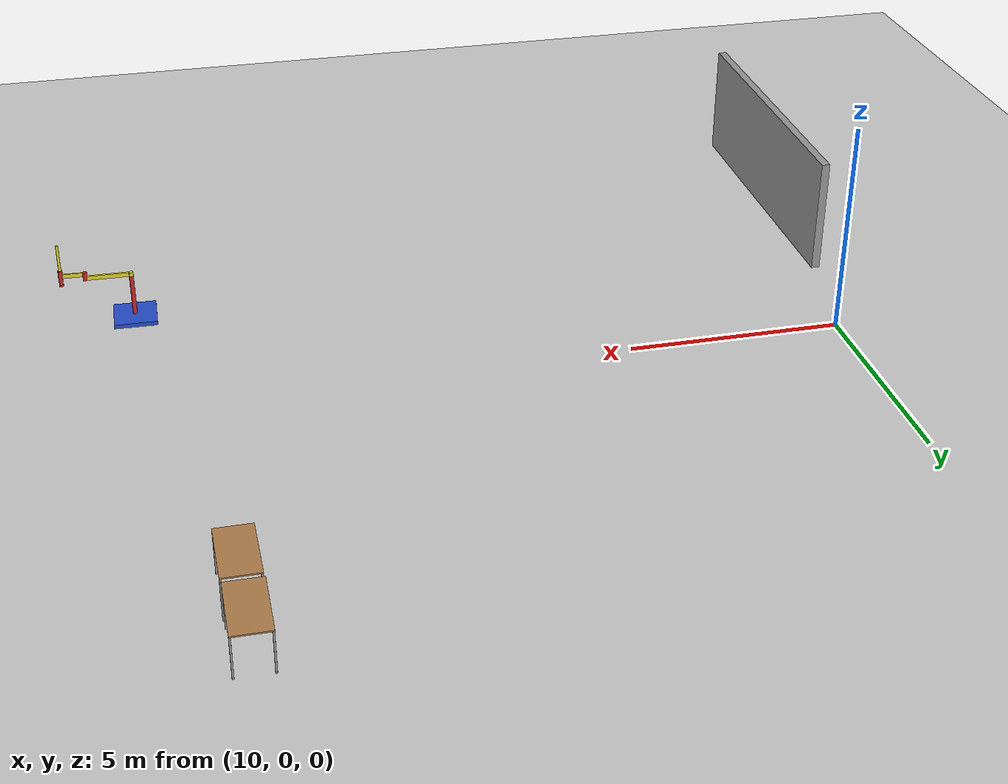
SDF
<sdf version="1.4">
 <world name="default">
  <model name="ground_plane">
   <static>1</static>
   <link name="link">
    <collision name="collision">
     <geometry><plane><normal>0 0 1</normal><size>100 100</size></plane></geometry>
     <surface><friction><ode><mu>100</mu><mu2>50</mu2></ode></friction></surface>
    </collision>
    <visual name="visual">
     <cast_shadows>0</cast_shadows>
     <geometry><plane><normal>0 0 1</normal><size>100 100</size></plane></geometry>
     <material>
      <script><uri>file://media/materials/scripts/gazebo.material</uri><name>Gazebo/Grey</name></script>
     </material>
    </visual>
    <velocity_decay><linear>0</linear><angular>0</angular></velocity_decay>
   </link>
  </model>
  <model name="grey_wall">
   <static>1</static>
   <link name="link">
    <pose>0 0 1.4 0 -0 0</pose>
    <collision name="collision"><geometry><box><size>7.5 0.2 2.8</size></box></geometry></collision>
    <visual name="visual">
     <cast_shadows>0</cast_shadows>
     <geometry><box><size>7.5 0.2 2.8</size></box></geometry>
     <material>
      <script>
       <uri>model://grey_wall/materials/scripts</uri>
       <uri>model://grey_wall/materials/textures</uri>
       <name>vrc/grey_wall</name>
      </script>
     </material>
    </visual>
    <velocity_decay><linear>0</linear><angular>0</angular></velocity_decay>
   </link>
   <pose>9.36447 -6.53474 0 0 0 -1.57522</pose>
  </model>
  <model name="table">
   <static>1</static>
   <link name="link">
    <collision name="surface">
     <pose>0 0 1 0 -0 0</pose>
     <geometry><box><size>1.5 0.8 0.03</size></box></geometry>
     <surface><friction><ode><mu>0.6</mu><mu2>0.6</mu2></ode></friction></surface>
    </collision>
    <visual name="visual1">
     <pose>0 0 1 0 -0 0</pose>
     <geometry><box><size>1.5 0.8 0.03</size></box></geometry>
     <material>
      <script><uri>file://media/materials/scripts/gazebo.material</uri><name>Gazebo/Wood</name></script>
     </material>
    </visual>
    <collision name="front_left_leg">
     <pose>0.68 0.38 0.5 0 -0 0</pose>
     <geometry><cylinder><radius>0.02</radius><length>1</length></cylinder></geometry>
    </collision>
    <visual name="front_left_leg">
     <pose>0.68 0.38 0.5 0 -0 0</pose>
     <geometry><cylinder><radius>0.02</radius><length>1</length></cylinder></geometry>
     <material>
      <script><uri>file://media/materials/scripts/gazebo.material</uri><name>Gazebo/Grey</name></script>
     </material>
    </visual>
    <collision name="front_right_leg">
     <pose>0.68 -0.38 0.5 0 -0 0</pose>
     <geometry><cylinder><radius>0.02</radius><length>1</length></cylinder></geometry>
    </collision>
    <visual name="front_right_leg">
     <pose>0.68 -0.38 0.5 0 -0 0</pose>
     <geometry><cylinder><radius>0.02</radius><length>1</length></cylinder></geometry>
     <material>
      <script><uri>file://media/materials/scripts/gazebo.material</uri><name>Gazebo/Grey</name></script>
     </material>
    </visual>
    <collision name="back_right_leg">
     <pose>-0.68 -0.38 0.5 0 -0 0</pose>
     <geometry><cylinder><radius>0.02</radius><length>1</length></cylinder></geometry>
    </collision>
    <visual name="back_right_leg">
     <pose>-0.68 -0.38 0.5 0 -0 0</pose>
     <geometry><cylinder><radius>0.02</radius><length>1</length></cylinder></geometry>
     <material>
      <script><uri>file://media/materials/scripts/gazebo.material</uri><name>Gazebo/Grey</name></script>
     </material>
    </visual>
    <collision name="back_left_leg">
     <pose>-0.68 0.38 0.5 0 -0 0</pose>
     <geometry><cylinder><radius>0.02</radius><length>1</length></cylinder></geometry>
    </collision>
    <visual name="back_left_leg">
     <pose>-0.68 0.38 0.5 0 -0 0</pose>
     <geometry><cylinder><radius>0.02</radius><length>1</length></cylinder></geometry>
     <material>
      <script><uri>file://media/materials/scripts/gazebo.material</uri><name>Gazebo/Grey</name></script>
     </material>
    </visual>
    <velocity_decay><linear>0</linear><angular>0</angular></velocity_decay>
   </link>
   <pose>24.6223 6.79371 0 0 0 -1.56769</pose>
  </model>
  <model name="table_1">
   <static>1</static>
   <link name="link">
    <collision name="surface">
     <pose>0 0 1 0 -0 0</pose>
     <geometry><box><size>1.5 0.8 0.03</size></box></geometry>
     <surface><friction><ode><mu>0.6</mu><mu2>0.6</mu2></ode></friction></surface>
    </collision>
    <visual name="visual1">
     <pose>0 0 1 0 -0 0</pose>
     <geometry><box><size>1.5 0.8 0.03</size></box></geometry>
     <material>
      <script><uri>file://media/materials/scripts/gazebo.material</uri><name>Gazebo/Wood</name></script>
     </material>
    </visual>
    <collision name="front_left_leg">
     <pose>0.68 0.38 0.5 0 -0 0</pose>
     <geometry><cylinder><radius>0.02</radius><length>1</length></cylinder></geometry>
    </collision>
    <visual name="front_left_leg">
     <pose>0.68 0.38 0.5 0 -0 0</pose>
     <geometry><cylinder><radius>0.02</radius><length>1</length></cylinder></geometry>
     <material>
      <script><uri>file://media/materials/scripts/gazebo.material</uri><name>Gazebo/Grey</name></script>
     </material>
    </visual>
    <collision name="front_right_leg">
     <pose>0.68 -0.38 0.5 0 -0 0</pose>
     <geometry><cylinder><radius>0.02</radius><length>1</length></cylinder></geometry>
    </collision>
    <visual name="front_right_leg">
     <pose>0.68 -0.38 0.5 0 -0 0</pose>
     <geometry><cylinder><radius>0.02</radius><length>1</length></cylinder></geometry>
     <material>
      <script><uri>file://media/materials/scripts/gazebo.material</uri><name>Gazebo/Grey</name></script>
     </material>
    </visual>
    <collision name="back_right_leg">
     <pose>-0.68 -0.38 0.5 0 -0 0</pose>
     <geometry><cylinder><radius>0.02</radius><length>1</length></cylinder></geometry>
    </collision>
    <visual name="back_right_leg">
     <pose>-0.68 -0.38 0.5 0 -0 0</pose>
     <geometry><cylinder><radius>0.02</radius><length>1</length></cylinder></geometry>
     <material>
      <script><uri>file://media/materials/scripts/gazebo.material</uri><name>Gazebo/Grey</name></script>
     </material>
    </visual>
    <collision name="back_left_leg">
     <pose>-0.68 0.38 0.5 0 -0 0</pose>
     <geometry><cylinder><radius>0.02</radius><length>1</length></cylinder></geometry>
    </collision>
    <visual name="back_left_leg">
     <pose>-0.68 0.38 0.5 0 -0 0</pose>
     <geometry><cylinder><radius>0.02</radius><length>1</length></cylinder></geometry>
     <material>
      <script><uri>file://media/materials/scripts/gazebo.material</uri><name>Gazebo/Grey</name></script>
     </material>
    </visual>
    <velocity_decay><linear>0</linear><angular>0</angular></velocity_decay>
   </link>
   <pose>24.6027 8.40542 0 0 0 -1.57795</pose>
  </model>
  <model name="simple_arm">
   <link name="arm_base">
    <inertial>
     <pose>0 0 0.00099 0 -0 0</pose>
     <inertia><ixx>1.11</ixx><ixy>0</ixy><ixz>0</ixz><iyy>100.11</iyy><iyz>0</iyz><izz>1.01</izz></inertia>
     <mass>101</mass>
    </inertial>
    <collision name="arm_base_geom">
     <pose>0 0 0.05 0 -0 0</pose>
     <geometry><box><size>1 1 0.1</size></box></geometry>
    </collision>
    <visual name="arm_base_geom_visual">
     <pose>0 0 0.05 0 -0 0</pose>
     <geometry><box><size>1 1 0.1</size></box></geometry>
     <material>
      <script><uri>file://media/materials/scripts/gazebo.material</uri><name>Gazebo/Blue</name></script>
     </material>
    </visual>
    <collision name="arm_base_geom_arm_trunk">
     <pose>0 0 0.6 0 -0 0</pose>
     <geometry><cylinder><radius>0.05</radius><length>1</length></cylinder></geometry>
    </collision>
    <visual name="arm_base_geom_arm_trunk_visual">
     <pose>0 0 0.6 0 -0 0</pose>
     <geometry><cylinder><radius>0.05</radius><length>1</length></cylinder></geometry>
     <material>
      <script><uri>file://media/materials/scripts/gazebo.material</uri><name>Gazebo/Red</name></script>
     </material>
    </visual>
    <velocity_decay><linear>0</linear><angular>0</angular></velocity_decay>
   </link>
   <link name="arm_shoulder_pan">
    <pose>0 0 1.1 0 -0 0</pose>
    <inertial>
     <pose>0.045455 0 0 0 -0 0</pose>
     <inertia><ixx>0.011</ixx><ixy>0</ixy><ixz>0</ixz><iyy>0.0225</iyy><iyz>0</iyz><izz>0.0135</izz></inertia>
     <mass>1.1</mass>
    </inertial>
    <collision name="arm_shoulder_pan_geom">
     <pose>0 0 0.05 0 -0 0</pose>
     <geometry><cylinder><radius>0.05</radius><length>0.1</length></cylinder></geometry>
    </collision>
    <visual name="arm_shoulder_pan_geom_visual">
     <pose>0 0 0.05 0 -0 0</pose>
     <geometry><cylinder><radius>0.05</radius><length>0.1</length></cylinder></geometry>
     <material>
      <script><uri>file://media/materials/scripts/gazebo.material</uri><name>Gazebo/Yellow</name></script>
     </material>
    </visual>
    <collision name="arm_shoulder_pan_geom_arm_shoulder">
     <pose>0.55 0 0.05 0 -0 0</pose>
     <geometry><box><size>1 0.05 0.1</size></box></geometry>
    </collision>
    <visual name="arm_shoulder_pan_geom_arm_shoulder_visual">
     <pose>0.55 0 0.05 0 -0 0</pose>
     <geometry><box><size>1 0.05 0.1</size></box></geometry>
     <material>
      <script><uri>file://media/materials/scripts/gazebo.material</uri><name>Gazebo/Yellow</name></script>
     </material>
    </visual>
    <velocity_decay><linear>0</linear><angular>0</angular></velocity_decay>
   </link>
   <link name="arm_elbow_pan">
    <pose>1.05 0 1.1 0 -0 0</pose>
    <inertial>
     <pose>0.0875 0 0.083333 0 -0 0</pose>
     <inertia>
      <ixx>0.031</ixx>
      <ixy>0</ixy>
      <ixz>0.005</ixz>
      <iyy>0.07275</iyy>
      <iyz>0</iyz>
      <izz>0.04475</izz>
     </inertia>
     <mass>1.2</mass>
    </inertial>
    <collision name="arm_elbow_pan_geom">
     <pose>0 0 0.1 0 -0 0</pose>
     <geometry><cylinder><radius>0.05</radius><length>0.2</length></cylinder></geometry>
    </collision>
    <visual name="arm_elbow_pan_geom_visual">
     <pose>0 0 0.1 0 -0 0</pose>
     <geometry><cylinder><radius>0.05</radius><length>0.2</length></cylinder></geometry>
     <material>
      <script><uri>file://media/materials/scripts/gazebo.material</uri><name>Gazebo/Red</name></script>
     </material>
    </visual>
    <collision name="arm_elbow_pan_geom_arm_elbow">
     <pose>0.3 0 0.15 0 -0 0</pose>
     <geometry><box><size>0.5 0.03 0.1</size></box></geometry>
    </collision>
    <visual name="arm_elbow_pan_geom_arm_elbow_visual">
     <pose>0.3 0 0.15 0 -0 0</pose>
     <geometry><box><size>0.5 0.03 0.1</size></box></geometry>
     <material>
      <script><uri>file://media/materials/scripts/gazebo.material</uri><name>Gazebo/Yellow</name></script>
     </material>
    </visual>
    <collision name="arm_elbow_pan_geom_arm_wrist">
     <pose>0.55 0 0.15 0 -0 0</pose>
     <geometry><cylinder><radius>0.05</radius><length>0.3</length></cylinder></geometry>
    </collision>
    <visual name="arm_elbow_pan_geom_arm_wrist_visual">
     <pose>0.55 0 0.15 0 -0 0</pose>
     <geometry><cylinder><radius>0.05</radius><length>0.3</length></cylinder></geometry>
     <material>
      <script><uri>file://media/materials/scripts/gazebo.material</uri><name>Gazebo/Red</name></script>
     </material>
    </visual>
    <velocity_decay><linear>0</linear><angular>0</angular></velocity_decay>
   </link>
   <link name="arm_wrist_lift">
    <pose>1.6 0 1.05 0 -0 0</pose>
    <inertial>
     <inertia><ixx>0.01</ixx><ixy>0</ixy><ixz>0</ixz><iyy>0.01</iyy><iyz>0</iyz><izz>0.001</izz></inertia>
     <mass>0.1</mass>
    </inertial>
    <collision name="arm_wrist_lift_geom">
     <pose>0 0 0.5 0 -0 0</pose>
     <geometry><cylinder><radius>0.03</radius><length>1</length></cylinder></geometry>
    </collision>
    <visual name="arm_wrist_lift_geom_visual">
     <pose>0 0 0.5 0 -0 0</pose>
     <geometry><cylinder><radius>0.03</radius><length>1</length></cylinder></geometry>
     <material>
      <script><uri>file://media/materials/scripts/gazebo.material</uri><name>Gazebo/Yellow</name></script>
     </material>
    </visual>
    <velocity_decay><linear>0</linear><angular>0</angular></velocity_decay>
   </link>
   <link name="arm_wrist_roll">
    <pose>1.6 0 1 0 -0 0</pose>
    <inertial>
     <inertia><ixx>0.01</ixx><ixy>0</ixy><ixz>0</ixz><iyy>0.01</iyy><iyz>0</iyz><izz>0.001</izz></inertia>
     <mass>0.1</mass>
    </inertial>
    <collision name="arm_wrist_roll_geom">
     <pose>0 0 0.025 0 -0 0</pose>
     <geometry><cylinder><radius>0.05</radius><length>0.05</length></cylinder></geometry>
    </collision>
    <visual name="arm_wrist_roll_geom_visual">
     <pose>0 0 0.025 0 -0 0</pose>
     <geometry><cylinder><radius>0.05</radius><length>0.05</length></cylinder></geometry>
     <material>
      <script><uri>file://media/materials/scripts/gazebo.material</uri><name>Gazebo/Red</name></script>
     </material>
    </visual>
    <velocity_decay><linear>0</linear><angular>0</angular></velocity_decay>
   </link>
   <joint name="arm_shoulder_pan_joint" type="revolute">
    <parent>arm_base</parent>
    <child>arm_shoulder_pan</child>
    <axis>
     <dynamics><damping>1</damping><friction>0</friction></dynamics>
     <xyz>0 0 1</xyz>
     <limit><lower>-1e+16</lower><upper>1e+16</upper></limit>
    </axis>
   </joint>
   <joint name="arm_elbow_pan_joint" type="revolute">
    <parent>arm_shoulder_pan</parent>
    <child>arm_elbow_pan</child>
    <axis>
     <dynamics><damping>1</damping><friction>0</friction></dynamics>
     <xyz>0 0 1</xyz>
     <limit><lower>-1e+16</lower><upper>1e+16</upper></limit>
    </axis>
   </joint>
   <joint name="arm_wrist_lift_joint" type="prismatic">
    <parent>arm_elbow_pan</parent>
    <child>arm_wrist_lift</child>
    <axis>
     <dynamics><damping>1</damping><friction>0</friction></dynamics>
     <limit><lower>-0.8</lower><upper>0.1</upper></limit>
     <xyz>0 0 1</xyz>
    </axis>
   </joint>
   <joint name="arm_wrist_roll_joint" type="revolute">
    <parent>arm_wrist_lift</parent>
    <child>arm_wrist_roll</child>
    <axis>
     <dynamics><damping>1</damping><friction>0</friction></dynamics>
     <limit><lower>-2.99999</lower><upper>2.99999</upper></limit>
     <xyz>0 0 1</xyz>
    </axis>
   </joint>
   <pose>26.0005 -3.99734 -0.000176 -0.000355 2e-06 -0.020039</pose>
   <static>0</static>
  </model>
 </world>
</sdf>
